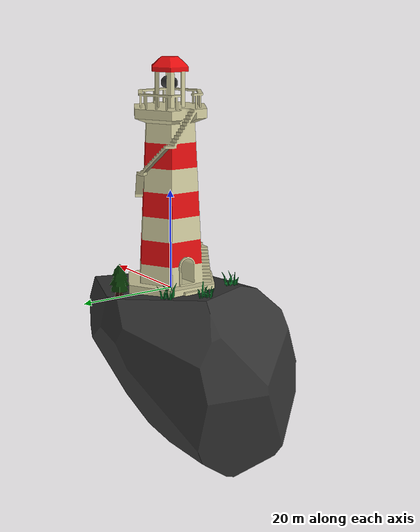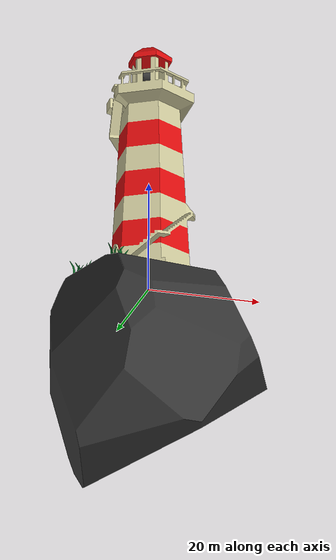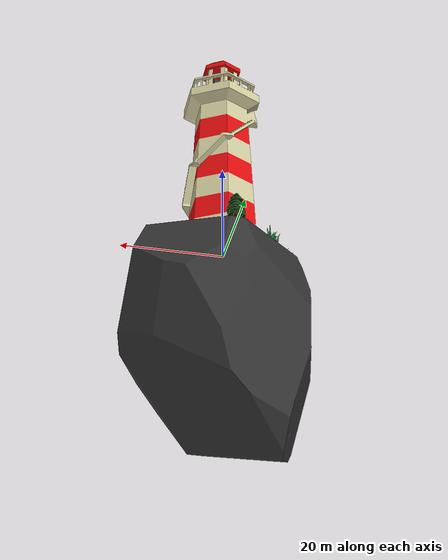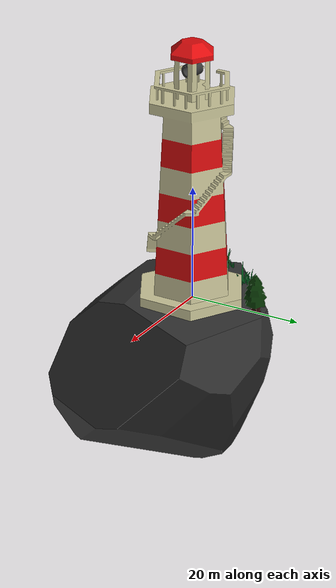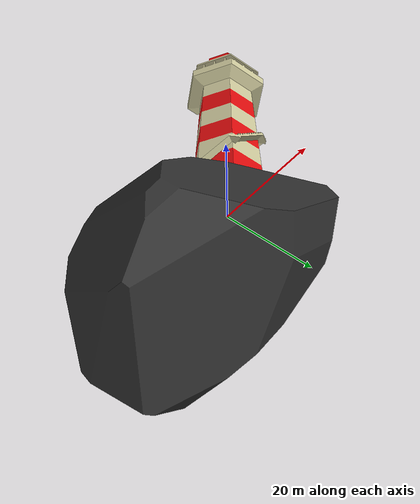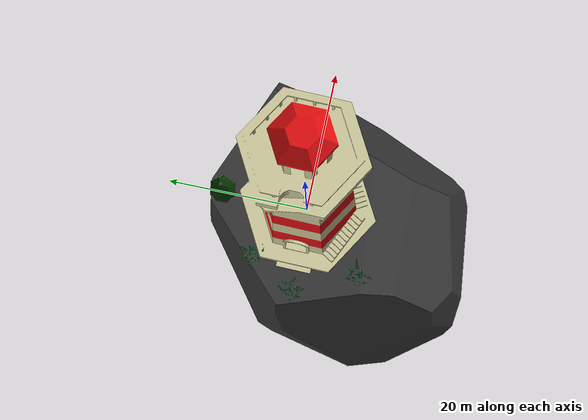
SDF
<?xml version="1.0"?>
<sdf version="1.6">
  <model name="aquabot_lighthouse_island">
    <include>
      <name>aquabot_lighthouse</name>
      <pose>0 0 -0.5 0 0 2.60</pose>
      <uri>aquabot_lighthouse</uri>
    </include>

    <include>
      <name>aquabot_rock_3</name>
      <pose>1.4 -5.55 -10.45 0.41 0.82 -1.09</pose>
      <uri>aquabot_rock</uri>
    </include>

    <include>
      <name>aquabot_grass_1</name>
      <pose>-12 -0.27 0.9 0 0 1</pose>
      <uri>aquabot_grass</uri>
    </include>

    <include>
      <name>aquabot_grass_2</name>
      <pose>-8 6 0.8 0 0 -1</pose>
      <uri>aquabot_grass</uri>
    </include>

    <include>
      <name>aquabot_grass_3</name>
      <pose>-8 -9 0.9 0 0 -2</pose>
      <uri>aquabot_grass</uri>
    </include>

    <include>
      <name>aquabot_sapling_1</name>
      <pose>0 12 0 0 0 0</pose>
      <uri>aquabot_sapling</uri>
    </include>
  </model>
</sdf>

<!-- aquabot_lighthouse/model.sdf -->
<sdf version="1.5">
  <model name="aquabot_lighthouse">
    <static>true</static>
    <link name="link">
      <collision name="collision">
        <pose>0 0 25 0 0 0</pose>
        <geometry>
          <cylinder>
            <radius>12</radius>
            <length>50</length>
          </cylinder>
        </geometry>
      </collision>
      <visual name="visual">
        <pose>0.0 0.0 0.0 0 0 0 </pose>
        <geometry>
          <mesh>
            <scale>.2 .2 .2</scale>
            <uri>mesh/lighthouse.dae</uri>
          </mesh>
        </geometry>
      </visual>
    </link>
  </model>
</sdf>

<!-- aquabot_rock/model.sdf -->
<sdf version="1.5">
  <model name="aquabot_rock">
    <static>true</static>
    <link name="link">
      <collision name="collision">
        <pose>0 0 0 0 0 0</pose>
        <geometry>
          <mesh>
            <scale>20 20 20</scale>
            <uri>mesh/rock.dae</uri>
          </mesh>
        </geometry>
      </collision>
      <visual name="visual">
        <pose>0.0 0.0 0.0 0 0 0 </pose>
        <geometry>
          <mesh>
            <scale>20 20 20</scale>
            <uri>mesh/rock.dae</uri>
          </mesh>
        </geometry>
        <material> <!-- rock material -->
          <ambient>0.5 0.5 0.5 1</ambient>
          <diffuse>0.2 0.2 0.2 1</diffuse>
          <specular>0.4 0.4 0.4 1</specular>
          <emissive>0 0 0 1</emissive>
        </material>
      </visual>
    </link>
  </model>
</sdf>

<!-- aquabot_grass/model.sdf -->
<sdf version="1.5">
  <model name="aquabot_grass">
    <static>true</static>
    <link name="link">
      <visual name="visual">
        <pose>0.0 0.0 0.0 0 0 0 </pose>
        <geometry>
          <mesh>
            <scale>5 5 5</scale>
            <uri>mesh/grass.dae</uri>
          </mesh>
        </geometry>
      </visual>
    </link>
  </model>
</sdf>

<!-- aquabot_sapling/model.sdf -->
<sdf version="1.5">
  <model name="aquabot_sapling">
    <static>true</static>
    <link name="link">
      <collision name="collision">
        <pose>0 0 3.5 0 0 0</pose>
        <geometry>
          <box>
            <size>4 4 7</size>
          </box>
        </geometry>
      </collision>
      <visual name="visual">
        <pose>0.0 0.0 0.0 0 0 0 </pose>
        <geometry>
          <mesh>
            <uri>mesh/sapling.dae</uri>
          </mesh>
        </geometry>
      </visual>
    </link>
  </model>
</sdf>
